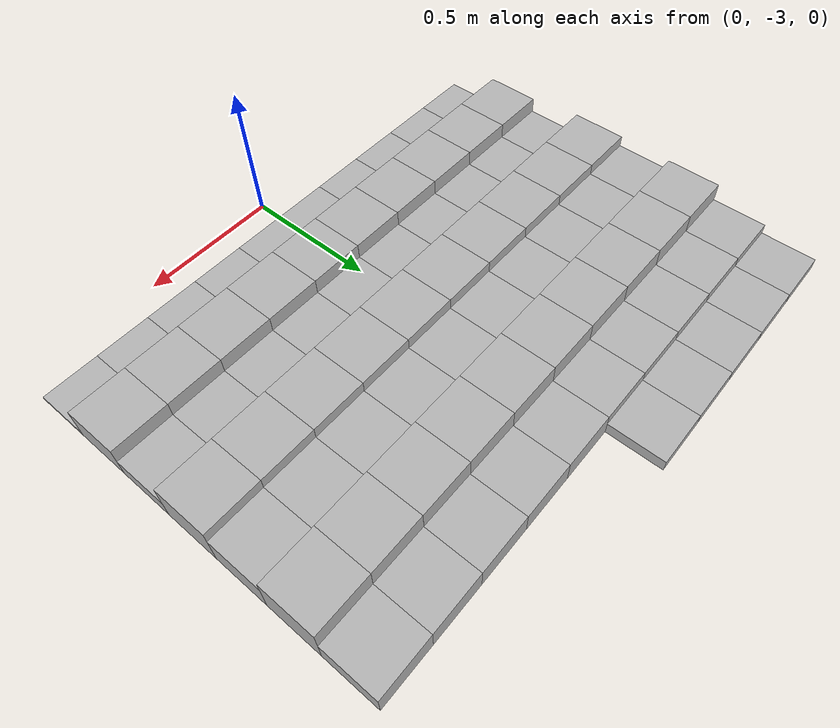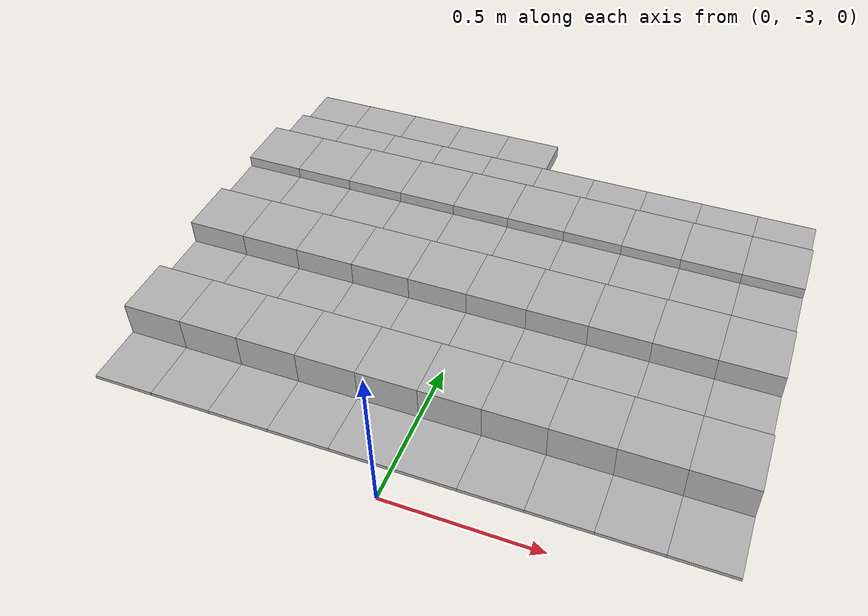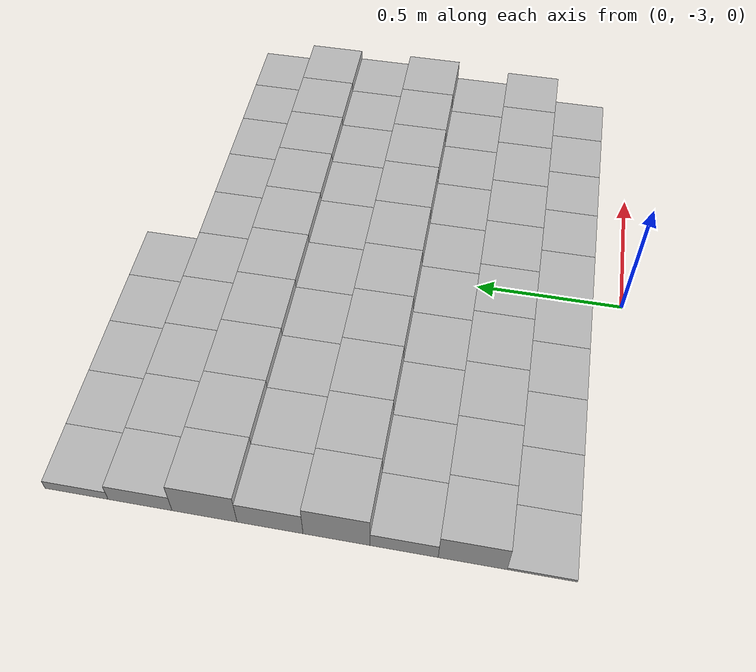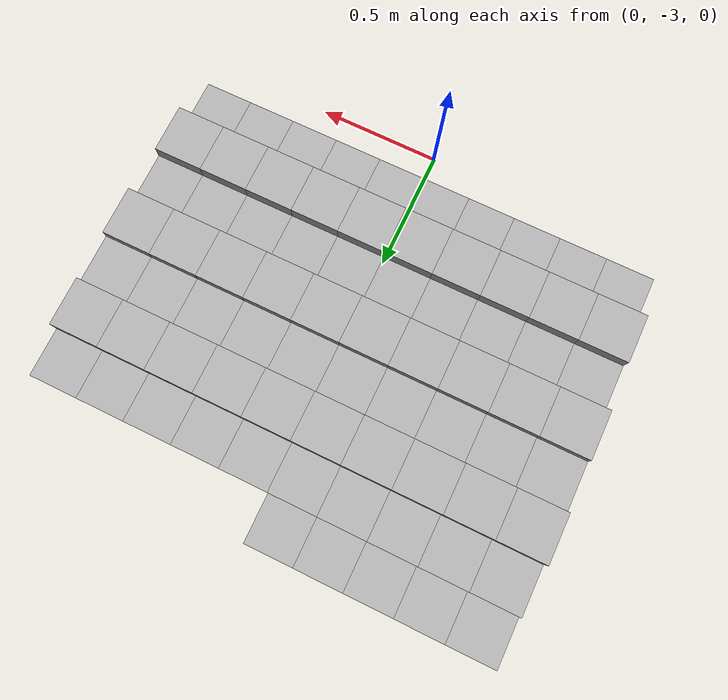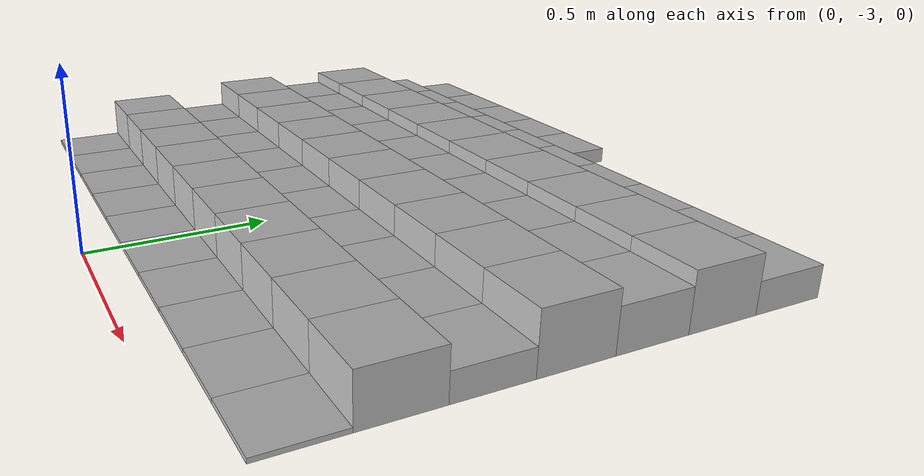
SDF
<sdf version="1.6">
 <model name="Terrain">
  <static>true</static>
  <link name="box_7_0">
   <pose>-0.9 -1.4 0.0229381124884 0 0 0</pose>
   <inertial>
    <mass>1.0</mass>
    <inertia><ixx>0.0</ixx><ixy>0.0</ixy><ixz>0.0</ixz><iyy>0.0</iyy><iyz>0.0</iyz><izz>0.0</izz></inertia>
   </inertial>
   <collision name="collision"><geometry><box><size>0.2 0.2 0.0458762249769</size></box></geometry></collision>
   <visual name="visual"><geometry><box><size>0.2 0.2 0.0458762249769</size></box></geometry></visual>
  </link>
  <link name="box_7_1">
   <pose>-0.7 -1.4 0.0229381124884 0 0 0</pose>
   <inertial>
    <mass>1.0</mass>
    <inertia><ixx>0.0</ixx><ixy>0.0</ixy><ixz>0.0</ixz><iyy>0.0</iyy><iyz>0.0</iyz><izz>0.0</izz></inertia>
   </inertial>
   <collision name="collision"><geometry><box><size>0.2 0.2 0.0458762249769</size></box></geometry></collision>
   <visual name="visual"><geometry><box><size>0.2 0.2 0.0458762249769</size></box></geometry></visual>
  </link>
  <link name="box_7_2">
   <pose>-0.5 -1.4 0.0229381124884 0 0 0</pose>
   <inertial>
    <mass>1.0</mass>
    <inertia><ixx>0.0</ixx><ixy>0.0</ixy><ixz>0.0</ixz><iyy>0.0</iyy><iyz>0.0</iyz><izz>0.0</izz></inertia>
   </inertial>
   <collision name="collision"><geometry><box><size>0.2 0.2 0.0458762249769</size></box></geometry></collision>
   <visual name="visual"><geometry><box><size>0.2 0.2 0.0458762249769</size></box></geometry></visual>
  </link>
  <link name="box_7_3">
   <pose>-0.3 -1.4 0.0229381124884 0 0 0</pose>
   <inertial>
    <mass>1.0</mass>
    <inertia><ixx>0.0</ixx><ixy>0.0</ixy><ixz>0.0</ixz><iyy>0.0</iyy><iyz>0.0</iyz><izz>0.0</izz></inertia>
   </inertial>
   <collision name="collision"><geometry><box><size>0.2 0.2 0.0458762249769</size></box></geometry></collision>
   <visual name="visual"><geometry><box><size>0.2 0.2 0.0458762249769</size></box></geometry></visual>
  </link>
  <link name="box_7_4">
   <pose>-0.1 -1.4 0.0229381124884 0 0 0</pose>
   <inertial>
    <mass>1.0</mass>
    <inertia><ixx>0.0</ixx><ixy>0.0</ixy><ixz>0.0</ixz><iyy>0.0</iyy><iyz>0.0</iyz><izz>0.0</izz></inertia>
   </inertial>
   <collision name="collision"><geometry><box><size>0.2 0.2 0.0458762249769</size></box></geometry></collision>
   <visual name="visual"><geometry><box><size>0.2 0.2 0.0458762249769</size></box></geometry></visual>
  </link>
  <link name="box_8_0">
   <pose>-0.9 -1.6 0.0423343681596 0 0 0</pose>
   <inertial>
    <mass>1.0</mass>
    <inertia><ixx>0.0</ixx><ixy>0.0</ixy><ixz>0.0</ixz><iyy>0.0</iyy><iyz>0.0</iyz><izz>0.0</izz></inertia>
   </inertial>
   <collision name="collision"><geometry><box><size>0.2 0.2 0.0846687363192</size></box></geometry></collision>
   <visual name="visual"><geometry><box><size>0.2 0.2 0.0846687363192</size></box></geometry></visual>
  </link>
  <link name="box_8_1">
   <pose>-0.7 -1.6 0.0423343681596 0 0 0</pose>
   <inertial>
    <mass>1.0</mass>
    <inertia><ixx>0.0</ixx><ixy>0.0</ixy><ixz>0.0</ixz><iyy>0.0</iyy><iyz>0.0</iyz><izz>0.0</izz></inertia>
   </inertial>
   <collision name="collision"><geometry><box><size>0.2 0.2 0.0846687363192</size></box></geometry></collision>
   <visual name="visual"><geometry><box><size>0.2 0.2 0.0846687363192</size></box></geometry></visual>
  </link>
  <link name="box_8_2">
   <pose>-0.5 -1.6 0.0423343681596 0 0 0</pose>
   <inertial>
    <mass>1.0</mass>
    <inertia><ixx>0.0</ixx><ixy>0.0</ixy><ixz>0.0</ixz><iyy>0.0</iyy><iyz>0.0</iyz><izz>0.0</izz></inertia>
   </inertial>
   <collision name="collision"><geometry><box><size>0.2 0.2 0.0846687363192</size></box></geometry></collision>
   <visual name="visual"><geometry><box><size>0.2 0.2 0.0846687363192</size></box></geometry></visual>
  </link>
  <link name="box_8_3">
   <pose>-0.3 -1.6 0.0423343681596 0 0 0</pose>
   <inertial>
    <mass>1.0</mass>
    <inertia><ixx>0.0</ixx><ixy>0.0</ixy><ixz>0.0</ixz><iyy>0.0</iyy><iyz>0.0</iyz><izz>0.0</izz></inertia>
   </inertial>
   <collision name="collision"><geometry><box><size>0.2 0.2 0.0846687363192</size></box></geometry></collision>
   <visual name="visual"><geometry><box><size>0.2 0.2 0.0846687363192</size></box></geometry></visual>
  </link>
  <link name="box_8_4">
   <pose>-0.1 -1.6 0.0423343681596 0 0 0</pose>
   <inertial>
    <mass>1.0</mass>
    <inertia><ixx>0.0</ixx><ixy>0.0</ixy><ixz>0.0</ixz><iyy>0.0</iyy><iyz>0.0</iyz><izz>0.0</izz></inertia>
   </inertial>
   <collision name="collision"><geometry><box><size>0.2 0.2 0.0846687363192</size></box></geometry></collision>
   <visual name="visual"><geometry><box><size>0.2 0.2 0.0846687363192</size></box></geometry></visual>
  </link>
  <link name="box_8_5">
   <pose>0.1 -1.6 0.0423343681596 0 0 0</pose>
   <inertial>
    <mass>1.0</mass>
    <inertia><ixx>0.0</ixx><ixy>0.0</ixy><ixz>0.0</ixz><iyy>0.0</iyy><iyz>0.0</iyz><izz>0.0</izz></inertia>
   </inertial>
   <collision name="collision"><geometry><box><size>0.2 0.2 0.0846687363192</size></box></geometry></collision>
   <visual name="visual"><geometry><box><size>0.2 0.2 0.0846687363192</size></box></geometry></visual>
  </link>
  <link name="box_8_6">
   <pose>0.3 -1.6 0.0423343681596 0 0 0</pose>
   <inertial>
    <mass>1.0</mass>
    <inertia><ixx>0.0</ixx><ixy>0.0</ixy><ixz>0.0</ixz><iyy>0.0</iyy><iyz>0.0</iyz><izz>0.0</izz></inertia>
   </inertial>
   <collision name="collision"><geometry><box><size>0.2 0.2 0.0846687363192</size></box></geometry></collision>
   <visual name="visual"><geometry><box><size>0.2 0.2 0.0846687363192</size></box></geometry></visual>
  </link>
  <link name="box_8_7">
   <pose>0.5 -1.6 0.0423343681596 0 0 0</pose>
   <inertial>
    <mass>1.0</mass>
    <inertia><ixx>0.0</ixx><ixy>0.0</ixy><ixz>0.0</ixz><iyy>0.0</iyy><iyz>0.0</iyz><izz>0.0</izz></inertia>
   </inertial>
   <collision name="collision"><geometry><box><size>0.2 0.2 0.0846687363192</size></box></geometry></collision>
   <visual name="visual"><geometry><box><size>0.2 0.2 0.0846687363192</size></box></geometry></visual>
  </link>
  <link name="box_8_8">
   <pose>0.7 -1.6 0.0423343681596 0 0 0</pose>
   <inertial>
    <mass>1.0</mass>
    <inertia><ixx>0.0</ixx><ixy>0.0</ixy><ixz>0.0</ixz><iyy>0.0</iyy><iyz>0.0</iyz><izz>0.0</izz></inertia>
   </inertial>
   <collision name="collision"><geometry><box><size>0.2 0.2 0.0846687363192</size></box></geometry></collision>
   <visual name="visual"><geometry><box><size>0.2 0.2 0.0846687363192</size></box></geometry></visual>
  </link>
  <link name="box_8_9">
   <pose>0.9 -1.6 0.0423343681596 0 0 0</pose>
   <inertial>
    <mass>1.0</mass>
    <inertia><ixx>0.0</ixx><ixy>0.0</ixy><ixz>0.0</ixz><iyy>0.0</iyy><iyz>0.0</iyz><izz>0.0</izz></inertia>
   </inertial>
   <collision name="collision"><geometry><box><size>0.2 0.2 0.0846687363192</size></box></geometry></collision>
   <visual name="visual"><geometry><box><size>0.2 0.2 0.0846687363192</size></box></geometry></visual>
  </link>
  <link name="box_9_0">
   <pose>-0.9 -1.8 0.0772465151053 0 0 0</pose>
   <inertial>
    <mass>1.0</mass>
    <inertia><ixx>0.0</ixx><ixy>0.0</ixy><ixz>0.0</ixz><iyy>0.0</iyy><iyz>0.0</iyz><izz>0.0</izz></inertia>
   </inertial>
   <collision name="collision"><geometry><box><size>0.2 0.2 0.154493030211</size></box></geometry></collision>
   <visual name="visual"><geometry><box><size>0.2 0.2 0.154493030211</size></box></geometry></visual>
  </link>
  <link name="box_9_1">
   <pose>-0.7 -1.8 0.0772465151053 0 0 0</pose>
   <inertial>
    <mass>1.0</mass>
    <inertia><ixx>0.0</ixx><ixy>0.0</ixy><ixz>0.0</ixz><iyy>0.0</iyy><iyz>0.0</iyz><izz>0.0</izz></inertia>
   </inertial>
   <collision name="collision"><geometry><box><size>0.2 0.2 0.154493030211</size></box></geometry></collision>
   <visual name="visual"><geometry><box><size>0.2 0.2 0.154493030211</size></box></geometry></visual>
  </link>
  <link name="box_9_2">
   <pose>-0.5 -1.8 0.0772465151053 0 0 0</pose>
   <inertial>
    <mass>1.0</mass>
    <inertia><ixx>0.0</ixx><ixy>0.0</ixy><ixz>0.0</ixz><iyy>0.0</iyy><iyz>0.0</iyz><izz>0.0</izz></inertia>
   </inertial>
   <collision name="collision"><geometry><box><size>0.2 0.2 0.154493030211</size></box></geometry></collision>
   <visual name="visual"><geometry><box><size>0.2 0.2 0.154493030211</size></box></geometry></visual>
  </link>
  <link name="box_9_3">
   <pose>-0.3 -1.8 0.0772465151053 0 0 0</pose>
   <inertial>
    <mass>1.0</mass>
    <inertia><ixx>0.0</ixx><ixy>0.0</ixy><ixz>0.0</ixz><iyy>0.0</iyy><iyz>0.0</iyz><izz>0.0</izz></inertia>
   </inertial>
   <collision name="collision"><geometry><box><size>0.2 0.2 0.154493030211</size></box></geometry></collision>
   <visual name="visual"><geometry><box><size>0.2 0.2 0.154493030211</size></box></geometry></visual>
  </link>
  <link name="box_9_4">
   <pose>-0.1 -1.8 0.0772465151053 0 0 0</pose>
   <inertial>
    <mass>1.0</mass>
    <inertia><ixx>0.0</ixx><ixy>0.0</ixy><ixz>0.0</ixz><iyy>0.0</iyy><iyz>0.0</iyz><izz>0.0</izz></inertia>
   </inertial>
   <collision name="collision"><geometry><box><size>0.2 0.2 0.154493030211</size></box></geometry></collision>
   <visual name="visual"><geometry><box><size>0.2 0.2 0.154493030211</size></box></geometry></visual>
  </link>
  <link name="box_9_5">
   <pose>0.1 -1.8 0.0772465151053 0 0 0</pose>
   <inertial>
    <mass>1.0</mass>
    <inertia><ixx>0.0</ixx><ixy>0.0</ixy><ixz>0.0</ixz><iyy>0.0</iyy><iyz>0.0</iyz><izz>0.0</izz></inertia>
   </inertial>
   <collision name="collision"><geometry><box><size>0.2 0.2 0.154493030211</size></box></geometry></collision>
   <visual name="visual"><geometry><box><size>0.2 0.2 0.154493030211</size></box></geometry></visual>
  </link>
  <link name="box_9_6">
   <pose>0.3 -1.8 0.0772465151053 0 0 0</pose>
   <inertial>
    <mass>1.0</mass>
    <inertia><ixx>0.0</ixx><ixy>0.0</ixy><ixz>0.0</ixz><iyy>0.0</iyy><iyz>0.0</iyz><izz>0.0</izz></inertia>
   </inertial>
   <collision name="collision"><geometry><box><size>0.2 0.2 0.154493030211</size></box></geometry></collision>
   <visual name="visual"><geometry><box><size>0.2 0.2 0.154493030211</size></box></geometry></visual>
  </link>
  <link name="box_9_7">
   <pose>0.5 -1.8 0.0772465151053 0 0 0</pose>
   <inertial>
    <mass>1.0</mass>
    <inertia><ixx>0.0</ixx><ixy>0.0</ixy><ixz>0.0</ixz><iyy>0.0</iyy><iyz>0.0</iyz><izz>0.0</izz></inertia>
   </inertial>
   <collision name="collision"><geometry><box><size>0.2 0.2 0.154493030211</size></box></geometry></collision>
   <visual name="visual"><geometry><box><size>0.2 0.2 0.154493030211</size></box></geometry></visual>
  </link>
  <link name="box_9_8">
   <pose>0.7 -1.8 0.0772465151053 0 0 0</pose>
   <inertial>
    <mass>1.0</mass>
    <inertia><ixx>0.0</ixx><ixy>0.0</ixy><ixz>0.0</ixz><iyy>0.0</iyy><iyz>0.0</iyz><izz>0.0</izz></inertia>
   </inertial>
   <collision name="collision"><geometry><box><size>0.2 0.2 0.154493030211</size></box></geometry></collision>
   <visual name="visual"><geometry><box><size>0.2 0.2 0.154493030211</size></box></geometry></visual>
  </link>
  <link name="box_9_9">
   <pose>0.9 -1.8 0.0772465151053 0 0 0</pose>
   <inertial>
    <mass>1.0</mass>
    <inertia><ixx>0.0</ixx><ixy>0.0</ixy><ixz>0.0</ixz><iyy>0.0</iyy><iyz>0.0</iyz><izz>0.0</izz></inertia>
   </inertial>
   <collision name="collision"><geometry><box><size>0.2 0.2 0.154493030211</size></box></geometry></collision>
   <visual name="visual"><geometry><box><size>0.2 0.2 0.154493030211</size></box></geometry></visual>
  </link>
  <link name="box_10_0">
   <pose>-0.9 -2.0 0.0579373813109 0 0 0</pose>
   <inertial>
    <mass>1.0</mass>
    <inertia><ixx>0.0</ixx><ixy>0.0</ixy><ixz>0.0</ixz><iyy>0.0</iyy><iyz>0.0</iyz><izz>0.0</izz></inertia>
   </inertial>
   <collision name="collision"><geometry><box><size>0.2 0.2 0.115874762622</size></box></geometry></collision>
   <visual name="visual"><geometry><box><size>0.2 0.2 0.115874762622</size></box></geometry></visual>
  </link>
  <link name="box_10_1">
   <pose>-0.7 -2.0 0.0579373813109 0 0 0</pose>
   <inertial>
    <mass>1.0</mass>
    <inertia><ixx>0.0</ixx><ixy>0.0</ixy><ixz>0.0</ixz><iyy>0.0</iyy><iyz>0.0</iyz><izz>0.0</izz></inertia>
   </inertial>
   <collision name="collision"><geometry><box><size>0.2 0.2 0.115874762622</size></box></geometry></collision>
   <visual name="visual"><geometry><box><size>0.2 0.2 0.115874762622</size></box></geometry></visual>
  </link>
  <link name="box_10_2">
   <pose>-0.5 -2.0 0.0579373813109 0 0 0</pose>
   <inertial>
    <mass>1.0</mass>
    <inertia><ixx>0.0</ixx><ixy>0.0</ixy><ixz>0.0</ixz><iyy>0.0</iyy><iyz>0.0</iyz><izz>0.0</izz></inertia>
   </inertial>
   <collision name="collision"><geometry><box><size>0.2 0.2 0.115874762622</size></box></geometry></collision>
   <visual name="visual"><geometry><box><size>0.2 0.2 0.115874762622</size></box></geometry></visual>
  </link>
  <link name="box_10_3">
   <pose>-0.3 -2.0 0.0579373813109 0 0 0</pose>
   <inertial>
    <mass>1.0</mass>
    <inertia><ixx>0.0</ixx><ixy>0.0</ixy><ixz>0.0</ixz><iyy>0.0</iyy><iyz>0.0</iyz><izz>0.0</izz></inertia>
   </inertial>
   <collision name="collision"><geometry><box><size>0.2 0.2 0.115874762622</size></box></geometry></collision>
   <visual name="visual"><geometry><box><size>0.2 0.2 0.115874762622</size></box></geometry></visual>
  </link>
  <link name="box_10_4">
   <pose>-0.1 -2.0 0.0579373813109 0 0 0</pose>
   <inertial>
    <mass>1.0</mass>
    <inertia><ixx>0.0</ixx><ixy>0.0</ixy><ixz>0.0</ixz><iyy>0.0</iyy><iyz>0.0</iyz><izz>0.0</izz></inertia>
   </inertial>
   <collision name="collision"><geometry><box><size>0.2 0.2 0.115874762622</size></box></geometry></collision>
   <visual name="visual"><geometry><box><size>0.2 0.2 0.115874762622</size></box></geometry></visual>
  </link>
  <link name="box_10_5">
   <pose>0.1 -2.0 0.0579373813109 0 0 0</pose>
   <inertial>
    <mass>1.0</mass>
    <inertia><ixx>0.0</ixx><ixy>0.0</ixy><ixz>0.0</ixz><iyy>0.0</iyy><iyz>0.0</iyz><izz>0.0</izz></inertia>
   </inertial>
   <collision name="collision"><geometry><box><size>0.2 0.2 0.115874762622</size></box></geometry></collision>
   <visual name="visual"><geometry><box><size>0.2 0.2 0.115874762622</size></box></geometry></visual>
  </link>
  <link name="box_10_6">
   <pose>0.3 -2.0 0.0579373813109 0 0 0</pose>
   <inertial>
    <mass>1.0</mass>
    <inertia><ixx>0.0</ixx><ixy>0.0</ixy><ixz>0.0</ixz><iyy>0.0</iyy><iyz>0.0</iyz><izz>0.0</izz></inertia>
   </inertial>
   <collision name="collision"><geometry><box><size>0.2 0.2 0.115874762622</size></box></geometry></collision>
   <visual name="visual"><geometry><box><size>0.2 0.2 0.115874762622</size></box></geometry></visual>
  </link>
  <link name="box_10_7">
   <pose>0.5 -2.0 0.0579373813109 0 0 0</pose>
   <inertial>
    <mass>1.0</mass>
    <inertia><ixx>0.0</ixx><ixy>0.0</ixy><ixz>0.0</ixz><iyy>0.0</iyy><iyz>0.0</iyz><izz>0.0</izz></inertia>
   </inertial>
   <collision name="collision"><geometry><box><size>0.2 0.2 0.115874762622</size></box></geometry></collision>
   <visual name="visual"><geometry><box><size>0.2 0.2 0.115874762622</size></box></geometry></visual>
  </link>
  <link name="box_10_8">
   <pose>0.7 -2.0 0.0579373813109 0 0 0</pose>
   <inertial>
    <mass>1.0</mass>
    <inertia><ixx>0.0</ixx><ixy>0.0</ixy><ixz>0.0</ixz><iyy>0.0</iyy><iyz>0.0</iyz><izz>0.0</izz></inertia>
   </inertial>
   <collision name="collision"><geometry><box><size>0.2 0.2 0.115874762622</size></box></geometry></collision>
   <visual name="visual"><geometry><box><size>0.2 0.2 0.115874762622</size></box></geometry></visual>
  </link>
  <link name="box_10_9">
   <pose>0.9 -2.0 0.0579373813109 0 0 0</pose>
   <inertial>
    <mass>1.0</mass>
    <inertia><ixx>0.0</ixx><ixy>0.0</ixy><ixz>0.0</ixz><iyy>0.0</iyy><iyz>0.0</iyz><izz>0.0</izz></inertia>
   </inertial>
   <collision name="collision"><geometry><box><size>0.2 0.2 0.115874762622</size></box></geometry></collision>
   <visual name="visual"><geometry><box><size>0.2 0.2 0.115874762622</size></box></geometry></visual>
  </link>
  <link name="box_11_0">
   <pose>-0.9 -2.2 0.0787241390612 0 0 0</pose>
   <inertial>
    <mass>1.0</mass>
    <inertia><ixx>0.0</ixx><ixy>0.0</ixy><ixz>0.0</ixz><iyy>0.0</iyy><iyz>0.0</iyz><izz>0.0</izz></inertia>
   </inertial>
   <collision name="collision"><geometry><box><size>0.2 0.2 0.157448278122</size></box></geometry></collision>
   <visual name="visual"><geometry><box><size>0.2 0.2 0.157448278122</size></box></geometry></visual>
  </link>
  <link name="box_11_1">
   <pose>-0.7 -2.2 0.0787241390612 0 0 0</pose>
   <inertial>
    <mass>1.0</mass>
    <inertia><ixx>0.0</ixx><ixy>0.0</ixy><ixz>0.0</ixz><iyy>0.0</iyy><iyz>0.0</iyz><izz>0.0</izz></inertia>
   </inertial>
   <collision name="collision"><geometry><box><size>0.2 0.2 0.157448278122</size></box></geometry></collision>
   <visual name="visual"><geometry><box><size>0.2 0.2 0.157448278122</size></box></geometry></visual>
  </link>
  <link name="box_11_2">
   <pose>-0.5 -2.2 0.0787241390612 0 0 0</pose>
   <inertial>
    <mass>1.0</mass>
    <inertia><ixx>0.0</ixx><ixy>0.0</ixy><ixz>0.0</ixz><iyy>0.0</iyy><iyz>0.0</iyz><izz>0.0</izz></inertia>
   </inertial>
   <collision name="collision"><geometry><box><size>0.2 0.2 0.157448278122</size></box></geometry></collision>
   <visual name="visual"><geometry><box><size>0.2 0.2 0.157448278122</size></box></geometry></visual>
  </link>
  <link name="box_11_3">
   <pose>-0.3 -2.2 0.0787241390612 0 0 0</pose>
   <inertial>
    <mass>1.0</mass>
    <inertia><ixx>0.0</ixx><ixy>0.0</ixy><ixz>0.0</ixz><iyy>0.0</iyy><iyz>0.0</iyz><izz>0.0</izz></inertia>
   </inertial>
   <collision name="collision"><geometry><box><size>0.2 0.2 0.157448278122</size></box></geometry></collision>
   <visual name="visual"><geometry><box><size>0.2 0.2 0.157448278122</size></box></geometry></visual>
  </link>
  <link name="box_11_4">
   <pose>-0.1 -2.2 0.0787241390612 0 0 0</pose>
   <inertial>
    <mass>1.0</mass>
    <inertia><ixx>0.0</ixx><ixy>0.0</ixy><ixz>0.0</ixz><iyy>0.0</iyy><iyz>0.0</iyz><izz>0.0</izz></inertia>
   </inertial>
   <collision name="collision"><geometry><box><size>0.2 0.2 0.157448278122</size></box></geometry></collision>
   <visual name="visual"><geometry><box><size>0.2 0.2 0.157448278122</size></box></geometry></visual>
  </link>
  <link name="box_11_5">
   <pose>0.1 -2.2 0.0787241390612 0 0 0</pose>
   <inertial>
    <mass>1.0</mass>
    <inertia><ixx>0.0</ixx><ixy>0.0</ixy><ixz>0.0</ixz><iyy>0.0</iyy><iyz>0.0</iyz><izz>0.0</izz></inertia>
   </inertial>
   <collision name="collision"><geometry><box><size>0.2 0.2 0.157448278122</size></box></geometry></collision>
   <visual name="visual"><geometry><box><size>0.2 0.2 0.157448278122</size></box></geometry></visual>
  </link>
  <link name="box_11_6">
   <pose>0.3 -2.2 0.0787241390612 0 0 0</pose>
   <inertial>
    <mass>1.0</mass>
    <inertia><ixx>0.0</ixx><ixy>0.0</ixy><ixz>0.0</ixz><iyy>0.0</iyy><iyz>0.0</iyz><izz>0.0</izz></inertia>
   </inertial>
   <collision name="collision"><geometry><box><size>0.2 0.2 0.157448278122</size></box></geometry></collision>
   <visual name="visual"><geometry><box><size>0.2 0.2 0.157448278122</size></box></geometry></visual>
  </link>
  <link name="box_11_7">
   <pose>0.5 -2.2 0.0787241390612 0 0 0</pose>
   <inertial>
    <mass>1.0</mass>
    <inertia><ixx>0.0</ixx><ixy>0.0</ixy><ixz>0.0</ixz><iyy>0.0</iyy><iyz>0.0</iyz><izz>0.0</izz></inertia>
   </inertial>
   <collision name="collision"><geometry><box><size>0.2 0.2 0.157448278122</size></box></geometry></collision>
   <visual name="visual"><geometry><box><size>0.2 0.2 0.157448278122</size></box></geometry></visual>
  </link>
  <link name="box_11_8">
   <pose>0.7 -2.2 0.0787241390612 0 0 0</pose>
   <inertial>
    <mass>1.0</mass>
    <inertia><ixx>0.0</ixx><ixy>0.0</ixy><ixz>0.0</ixz><iyy>0.0</iyy><iyz>0.0</iyz><izz>0.0</izz></inertia>
   </inertial>
   <collision name="collision"><geometry><box><size>0.2 0.2 0.157448278122</size></box></geometry></collision>
   <visual name="visual"><geometry><box><size>0.2 0.2 0.157448278122</size></box></geometry></visual>
  </link>
  <link name="box_11_9">
   <pose>0.9 -2.2 0.0787241390612 0 0 0</pose>
   <inertial>
    <mass>1.0</mass>
    <inertia><ixx>0.0</ixx><ixy>0.0</ixy><ixz>0.0</ixz><iyy>0.0</iyy><iyz>0.0</iyz><izz>0.0</izz></inertia>
   </inertial>
   <collision name="collision"><geometry><box><size>0.2 0.2 0.157448278122</size></box></geometry></collision>
   <visual name="visual"><geometry><box><size>0.2 0.2 0.157448278122</size></box></geometry></visual>
  </link>
  <link name="box_12_0">
   <pose>-0.9 -2.4 0.036907768955 0 0 0</pose>
   <inertial>
    <mass>1.0</mass>
    <inertia><ixx>0.0</ixx><ixy>0.0</ixy><ixz>0.0</ixz><iyy>0.0</iyy><iyz>0.0</iyz><izz>0.0</izz></inertia>
   </inertial>
   <collision name="collision"><geometry><box><size>0.2 0.2 0.0738155379101</size></box></geometry></collision>
   <visual name="visual"><geometry><box><size>0.2 0.2 0.0738155379101</size></box></geometry></visual>
  </link>
  <link name="box_12_1">
   <pose>-0.7 -2.4 0.036907768955 0 0 0</pose>
   <inertial>
    <mass>1.0</mass>
    <inertia><ixx>0.0</ixx><ixy>0.0</ixy><ixz>0.0</ixz><iyy>0.0</iyy><iyz>0.0</iyz><izz>0.0</izz></inertia>
   </inertial>
   <collision name="collision"><geometry><box><size>0.2 0.2 0.0738155379101</size></box></geometry></collision>
   <visual name="visual"><geometry><box><size>0.2 0.2 0.0738155379101</size></box></geometry></visual>
  </link>
  <link name="box_12_2">
   <pose>-0.5 -2.4 0.036907768955 0 0 0</pose>
   <inertial>
    <mass>1.0</mass>
    <inertia><ixx>0.0</ixx><ixy>0.0</ixy><ixz>0.0</ixz><iyy>0.0</iyy><iyz>0.0</iyz><izz>0.0</izz></inertia>
   </inertial>
   <collision name="collision"><geometry><box><size>0.2 0.2 0.0738155379101</size></box></geometry></collision>
   <visual name="visual"><geometry><box><size>0.2 0.2 0.0738155379101</size></box></geometry></visual>
  </link>
  <link name="box_12_3">
   <pose>-0.3 -2.4 0.036907768955 0 0 0</pose>
   <inertial>
    <mass>1.0</mass>
    <inertia><ixx>0.0</ixx><ixy>0.0</ixy><ixz>0.0</ixz><iyy>0.0</iyy><iyz>0.0</iyz><izz>0.0</izz></inertia>
   </inertial>
   <collision name="collision"><geometry><box><size>0.2 0.2 0.0738155379101</size></box></geometry></collision>
   <visual name="visual"><geometry><box><size>0.2 0.2 0.0738155379101</size></box></geometry></visual>
  </link>
  <link name="box_12_4">
   <pose>-0.1 -2.4 0.036907768955 0 0 0</pose>
   <inertial>
    <mass>1.0</mass>
    <inertia><ixx>0.0</ixx><ixy>0.0</ixy><ixz>0.0</ixz><iyy>0.0</iyy><iyz>0.0</iyz><izz>0.0</izz></inertia>
   </inertial>
   <collision name="collision"><geometry><box><size>0.2 0.2 0.0738155379101</size></box></geometry></collision>
   <visual name="visual"><geometry><box><size>0.2 0.2 0.0738155379101</size></box></geometry></visual>
  </link>
  <link name="box_12_5">
   <pose>0.1 -2.4 0.036907768955 0 0 0</pose>
   <inertial>
    <mass>1.0</mass>
    <inertia><ixx>0.0</ixx><ixy>0.0</ixy><ixz>0.0</ixz><iyy>0.0</iyy><iyz>0.0</iyz><izz>0.0</izz></inertia>
   </inertial>
   <collision name="collision"><geometry><box><size>0.2 0.2 0.0738155379101</size></box></geometry></collision>
   <visual name="visual"><geometry><box><size>0.2 0.2 0.0738155379101</size></box></geometry></visual>
  </link>
  <link name="box_12_6">
   <pose>0.3 -2.4 0.036907768955 0 0 0</pose>
   <inertial>
    <mass>1.0</mass>
    <inertia><ixx>0.0</ixx><ixy>0.0</ixy><ixz>0.0</ixz><iyy>0.0</iyy><iyz>0.0</iyz><izz>0.0</izz></inertia>
   </inertial>
   <collision name="collision"><geometry><box><size>0.2 0.2 0.0738155379101</size></box></geometry></collision>
   <visual name="visual"><geometry><box><size>0.2 0.2 0.0738155379101</size></box></geometry></visual>
  </link>
  <link name="box_12_7">
   <pose>0.5 -2.4 0.036907768955 0 0 0</pose>
   <inertial>
    <mass>1.0</mass>
    <inertia><ixx>0.0</ixx><ixy>0.0</ixy><ixz>0.0</ixz><iyy>0.0</iyy><iyz>0.0</iyz><izz>0.0</izz></inertia>
   </inertial>
   <collision name="collision"><geometry><box><size>0.2 0.2 0.0738155379101</size></box></geometry></collision>
   <visual name="visual"><geometry><box><size>0.2 0.2 0.0738155379101</size></box></geometry></visual>
  </link>
  <link name="box_12_8">
   <pose>0.7 -2.4 0.036907768955 0 0 0</pose>
   <inertial>
    <mass>1.0</mass>
    <inertia><ixx>0.0</ixx><ixy>0.0</ixy><ixz>0.0</ixz><iyy>0.0</iyy><iyz>0.0</iyz><izz>0.0</izz></inertia>
   </inertial>
   <collision name="collision"><geometry><box><size>0.2 0.2 0.0738155379101</size></box></geometry></collision>
   <visual name="visual"><geometry><box><size>0.2 0.2 0.0738155379101</size></box></geometry></visual>
  </link>
  <link name="box_12_9">
   <pose>0.9 -2.4 0.036907768955 0 0 0</pose>
   <inertial>
    <mass>1.0</mass>
    <inertia><ixx>0.0</ixx><ixy>0.0</ixy><ixz>0.0</ixz><iyy>0.0</iyy><iyz>0.0</iyz><izz>0.0</izz></inertia>
   </inertial>
   <collision name="collision"><geometry><box><size>0.2 0.2 0.0738155379101</size></box></geometry></collision>
   <visual name="visual"><geometry><box><size>0.2 0.2 0.0738155379101</size></box></geometry></visual>
  </link>
  <link name="box_13_0">
   <pose>-0.9 -2.6 0.0657005955834 0 0 0</pose>
   <inertial>
    <mass>1.0</mass>
    <inertia><ixx>0.0</ixx><ixy>0.0</ixy><ixz>0.0</ixz><iyy>0.0</iyy><iyz>0.0</iyz><izz>0.0</izz></inertia>
   </inertial>
   <collision name="collision"><geometry><box><size>0.2 0.2 0.131401191167</size></box></geometry></collision>
   <visual name="visual"><geometry><box><size>0.2 0.2 0.131401191167</size></box></geometry></visual>
  </link>
  <link name="box_13_1">
   <pose>-0.7 -2.6 0.0657005955834 0 0 0</pose>
   <inertial>
    <mass>1.0</mass>
    <inertia><ixx>0.0</ixx><ixy>0.0</ixy><ixz>0.0</ixz><iyy>0.0</iyy><iyz>0.0</iyz><izz>0.0</izz></inertia>
   </inertial>
   <collision name="collision"><geometry><box><size>0.2 0.2 0.131401191167</size></box></geometry></collision>
   <visual name="visual"><geometry><box><size>0.2 0.2 0.131401191167</size></box></geometry></visual>
  </link>
  <link name="box_13_2">
   <pose>-0.5 -2.6 0.0657005955834 0 0 0</pose>
   <inertial>
    <mass>1.0</mass>
    <inertia><ixx>0.0</ixx><ixy>0.0</ixy><ixz>0.0</ixz><iyy>0.0</iyy><iyz>0.0</iyz><izz>0.0</izz></inertia>
   </inertial>
   <collision name="collision"><geometry><box><size>0.2 0.2 0.131401191167</size></box></geometry></collision>
   <visual name="visual"><geometry><box><size>0.2 0.2 0.131401191167</size></box></geometry></visual>
  </link>
  <link name="box_13_3">
   <pose>-0.3 -2.6 0.0657005955834 0 0 0</pose>
   <inertial>
    <mass>1.0</mass>
    <inertia><ixx>0.0</ixx><ixy>0.0</ixy><ixz>0.0</ixz><iyy>0.0</iyy><iyz>0.0</iyz><izz>0.0</izz></inertia>
   </inertial>
   <collision name="collision"><geometry><box><size>0.2 0.2 0.131401191167</size></box></geometry></collision>
   <visual name="visual"><geometry><box><size>0.2 0.2 0.131401191167</size></box></geometry></visual>
  </link>
  <link name="box_13_4">
   <pose>-0.1 -2.6 0.0657005955834 0 0 0</pose>
   <inertial>
    <mass>1.0</mass>
    <inertia><ixx>0.0</ixx><ixy>0.0</ixy><ixz>0.0</ixz><iyy>0.0</iyy><iyz>0.0</iyz><izz>0.0</izz></inertia>
   </inertial>
   <collision name="collision"><geometry><box><size>0.2 0.2 0.131401191167</size></box></geometry></collision>
   <visual name="visual"><geometry><box><size>0.2 0.2 0.131401191167</size></box></geometry></visual>
  </link>
  <link name="box_13_5">
   <pose>0.1 -2.6 0.0657005955834 0 0 0</pose>
   <inertial>
    <mass>1.0</mass>
    <inertia><ixx>0.0</ixx><ixy>0.0</ixy><ixz>0.0</ixz><iyy>0.0</iyy><iyz>0.0</iyz><izz>0.0</izz></inertia>
   </inertial>
   <collision name="collision"><geometry><box><size>0.2 0.2 0.131401191167</size></box></geometry></collision>
   <visual name="visual"><geometry><box><size>0.2 0.2 0.131401191167</size></box></geometry></visual>
  </link>
  <link name="box_13_6">
   <pose>0.3 -2.6 0.0657005955834 0 0 0</pose>
   <inertial>
    <mass>1.0</mass>
    <inertia><ixx>0.0</ixx><ixy>0.0</ixy><ixz>0.0</ixz><iyy>0.0</iyy><iyz>0.0</iyz><izz>0.0</izz></inertia>
   </inertial>
   <collision name="collision"><geometry><box><size>0.2 0.2 0.131401191167</size></box></geometry></collision>
   <visual name="visual"><geometry><box><size>0.2 0.2 0.131401191167</size></box></geometry></visual>
  </link>
  <link name="box_13_7">
   <pose>0.5 -2.6 0.0657005955834 0 0 0</pose>
   <inertial>
    <mass>1.0</mass>
    <inertia><ixx>0.0</ixx><ixy>0.0</ixy><ixz>0.0</ixz><iyy>0.0</iyy><iyz>0.0</iyz><izz>0.0</izz></inertia>
   </inertial>
   <collision name="collision"><geometry><box><size>0.2 0.2 0.131401191167</size></box></geometry></collision>
   <visual name="visual"><geometry><box><size>0.2 0.2 0.131401191167</size></box></geometry></visual>
  </link>
  <link name="box_13_8">
   <pose>0.7 -2.6 0.0657005955834 0 0 0</pose>
   <inertial>
    <mass>1.0</mass>
    <inertia><ixx>0.0</ixx><ixy>0.0</ixy><ixz>0.0</ixz><iyy>0.0</iyy><iyz>0.0</iyz><izz>0.0</izz></inertia>
   </inertial>
   <collision name="collision"><geometry><box><size>0.2 0.2 0.131401191167</size></box></geometry></collision>
   <visual name="visual"><geometry><box><size>0.2 0.2 0.131401191167</size></box></geometry></visual>
  </link>
  <link name="box_13_9">
   <pose>0.9 -2.6 0.0657005955834 0 0 0</pose>
   <inertial>
    <mass>1.0</mass>
    <inertia><ixx>0.0</ixx><ixy>0.0</ixy><ixz>0.0</ixz><iyy>0.0</iyy><iyz>0.0</iyz><izz>0.0</izz></inertia>
   </inertial>
   <collision name="collision"><geometry><box><size>0.2 0.2 0.131401191167</size></box></geometry></collision>
   <visual name="visual"><geometry><box><size>0.2 0.2 0.131401191167</size></box></geometry></visual>
  </link>
  <link name="box_14_0">
   <pose>-0.9 -2.8 0.0058671319577 0 0 0</pose>
   <inertial>
    <mass>1.0</mass>
    <inertia><ixx>0.0</ixx><ixy>0.0</ixy><ixz>0.0</ixz><iyy>0.0</iyy><iyz>0.0</iyz><izz>0.0</izz></inertia>
   </inertial>
   <collision name="collision"><geometry><box><size>0.2 0.2 0.0117342639154</size></box></geometry></collision>
   <visual name="visual"><geometry><box><size>0.2 0.2 0.0117342639154</size></box></geometry></visual>
  </link>
  <link name="box_14_1">
   <pose>-0.7 -2.8 0.0058671319577 0 0 0</pose>
   <inertial>
    <mass>1.0</mass>
    <inertia><ixx>0.0</ixx><ixy>0.0</ixy><ixz>0.0</ixz><iyy>0.0</iyy><iyz>0.0</iyz><izz>0.0</izz></inertia>
   </inertial>
   <collision name="collision"><geometry><box><size>0.2 0.2 0.0117342639154</size></box></geometry></collision>
   <visual name="visual"><geometry><box><size>0.2 0.2 0.0117342639154</size></box></geometry></visual>
  </link>
  <link name="box_14_2">
   <pose>-0.5 -2.8 0.0058671319577 0 0 0</pose>
   <inertial>
    <mass>1.0</mass>
    <inertia><ixx>0.0</ixx><ixy>0.0</ixy><ixz>0.0</ixz><iyy>0.0</iyy><iyz>0.0</iyz><izz>0.0</izz></inertia>
   </inertial>
   <collision name="collision"><geometry><box><size>0.2 0.2 0.0117342639154</size></box></geometry></collision>
   <visual name="visual"><geometry><box><size>0.2 0.2 0.0117342639154</size></box></geometry></visual>
  </link>
  <link name="box_14_3">
   <pose>-0.3 -2.8 0.0058671319577 0 0 0</pose>
   <inertial>
    <mass>1.0</mass>
    <inertia><ixx>0.0</ixx><ixy>0.0</ixy><ixz>0.0</ixz><iyy>0.0</iyy><iyz>0.0</iyz><izz>0.0</izz></inertia>
   </inertial>
   <collision name="collision"><geometry><box><size>0.2 0.2 0.0117342639154</size></box></geometry></collision>
   <visual name="visual"><geometry><box><size>0.2 0.2 0.0117342639154</size></box></geometry></visual>
  </link>
  <link name="box_14_4">
   <pose>-0.1 -2.8 0.0058671319577 0 0 0</pose>
   <inertial>
    <mass>1.0</mass>
    <inertia><ixx>0.0</ixx><ixy>0.0</ixy><ixz>0.0</ixz><iyy>0.0</iyy><iyz>0.0</iyz><izz>0.0</izz></inertia>
   </inertial>
   <collision name="collision"><geometry><box><size>0.2 0.2 0.0117342639154</size></box></geometry></collision>
   <visual name="visual"><geometry><box><size>0.2 0.2 0.0117342639154</size></box></geometry></visual>
  </link>
  <link name="box_14_5">
   <pose>0.1 -2.8 0.0058671319577 0 0 0</pose>
   <inertial>
    <mass>1.0</mass>
    <inertia><ixx>0.0</ixx><ixy>0.0</ixy><ixz>0.0</ixz><iyy>0.0</iyy><iyz>0.0</iyz><izz>0.0</izz></inertia>
   </inertial>
   <collision name="collision"><geometry><box><size>0.2 0.2 0.0117342639154</size></box></geometry></collision>
   <visual name="visual"><geometry><box><size>0.2 0.2 0.0117342639154</size></box></geometry></visual>
  </link>
  <link name="box_14_6">
   <pose>0.3 -2.8 0.0058671319577 0 0 0</pose>
   <inertial>
    <mass>1.0</mass>
    <inertia><ixx>0.0</ixx><ixy>0.0</ixy><ixz>0.0</ixz><iyy>0.0</iyy><iyz>0.0</iyz><izz>0.0</izz></inertia>
   </inertial>
   <collision name="collision"><geometry><box><size>0.2 0.2 0.0117342639154</size></box></geometry></collision>
   <visual name="visual"><geometry><box><size>0.2 0.2 0.0117342639154</size></box></geometry></visual>
  </link>
  <link name="box_14_7">
   <pose>0.5 -2.8 0.0058671319577 0 0 0</pose>
   <inertial>
    <mass>1.0</mass>
    <inertia><ixx>0.0</ixx><ixy>0.0</ixy><ixz>0.0</ixz><iyy>0.0</iyy><iyz>0.0</iyz><izz>0.0</izz></inertia>
   </inertial>
   <collision name="collision"><geometry><box><size>0.2 0.2 0.0117342639154</size></box></geometry></collision>
   <visual name="visual"><geometry><box><size>0.2 0.2 0.0117342639154</size></box></geometry></visual>
  </link>
  <link name="box_14_8">
   <pose>0.7 -2.8 0.0058671319577 0 0 0</pose>
   <inertial>
    <mass>1.0</mass>
    <inertia><ixx>0.0</ixx><ixy>0.0</ixy><ixz>0.0</ixz><iyy>0.0</iyy><iyz>0.0</iyz><izz>0.0</izz></inertia>
   </inertial>
   <collision name="collision"><geometry><box><size>0.2 0.2 0.0117342639154</size></box></geometry></collision>
   <visual name="visual"><geometry><box><size>0.2 0.2 0.0117342639154</size></box></geometry></visual>
  </link>
  <link name="box_14_9">
   <pose>0.9 -2.8 0.0058671319577 0 0 0</pose>
   <inertial>
    <mass>1.0</mass>
    <inertia><ixx>0.0</ixx><ixy>0.0</ixy><ixz>0.0</ixz><iyy>0.0</iyy><iyz>0.0</iyz><izz>0.0</izz></inertia>
   </inertial>
   <collision name="collision"><geometry><box><size>0.2 0.2 0.0117342639154</size></box></geometry></collision>
   <visual name="visual"><geometry><box><size>0.2 0.2 0.0117342639154</size></box></geometry></visual>
  </link>
 </model>
</sdf>
